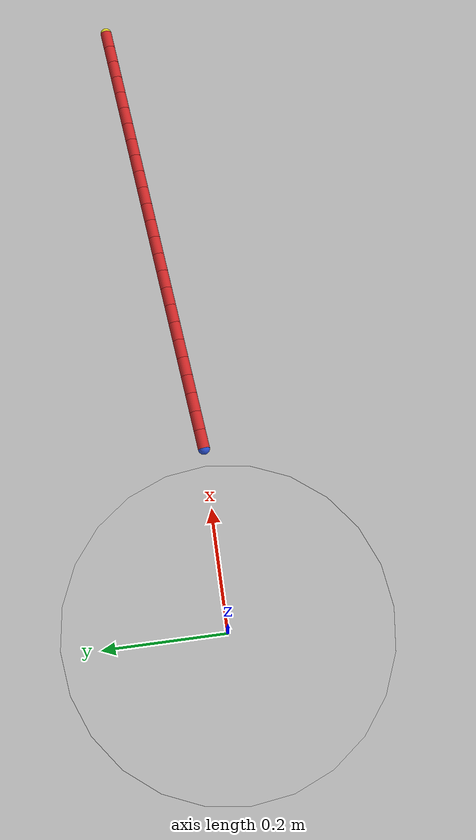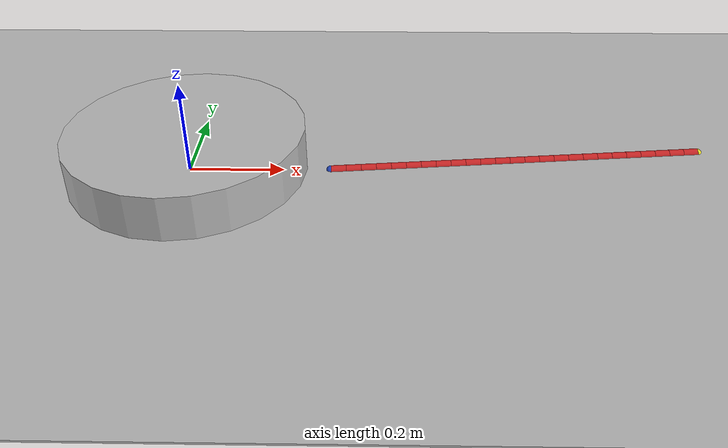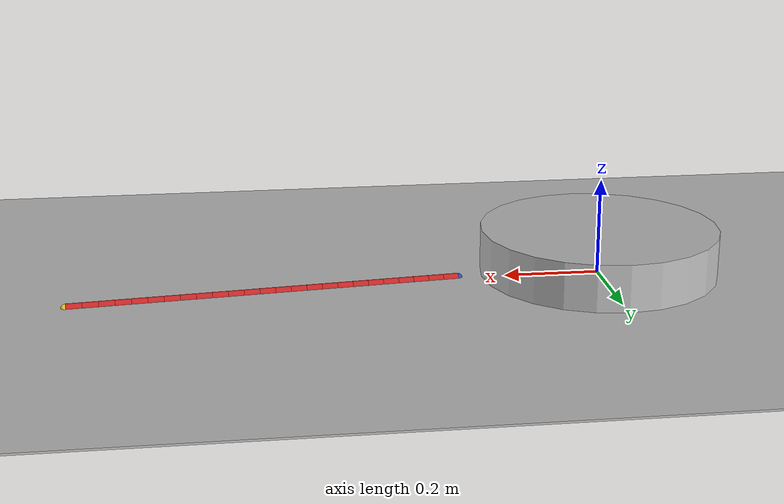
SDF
<?xml version="1.0" ?>
<sdf version="1.4">
    <world name="default">
        <scene>
            <grid>false</grid>
            <origin_visual>false</origin_visual>
            <sky>
                <clouds>
                    <speed>12</speed>
                </clouds>
            </sky>
        </scene>

        <physics type="ode">
            <real_time_update_rate>1</real_time_update_rate>
            <ode>
                <solver>
                    <thread_position_correction>0</thread_position_correction>
                    <island_threads>2</island_threads>
                </solver>
                <constraints>
                    <erp>0.8</erp>
                </constraints>
            </ode>
        </physics>

        <plugin name="arm_gazebo_ros" filename="libarm_gazebo_ros_plugin.so"/>
        <plugin name="gazebo_ros_tf_plugin" filename="libgazebo_ros_tf_plugin.so"/>
        <plugin name="position_3d_plugin" filename="libposition_3d_plugin.so"/>
        <plugin name="collision_map_plugin" filename="libcollision_map_plugin.so"/>

        <include>
            <uri>model://my_ground_plane</uri>
            <pose>0 0 0 0 0 0</pose>
        </include>

        <include>
            <uri>model://sun</uri>
        </include>

        <!-- The Rope -->
        <include>
            <pose>0.3 0 0 0 0 0.1</pose>
            <uri>model://rope_3d</uri>
        </include>

        <model name="cylinder">
            <pose>0 0 0 0 0 0</pose>
            <static>true</static>
            <link name="link">
                <pose>0 0 0.05 0 0 0</pose>
                <collision name="link_collision">
                    <geometry>
                        <cylinder>
                            <radius>0.25</radius>
                            <length>0.1</length>
                        </cylinder>
                    </geometry>
                </collision>
                <visual name="link_visual">
                    <geometry>
                        <cylinder>
                            <radius>0.25</radius>
                            <length>0.1</length>
                        </cylinder>
                    </geometry>
                </visual>
            </link>
        </model>
    </world>
</sdf>

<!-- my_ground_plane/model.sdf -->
<sdf version="1.5">
    <model name="my_ground_plane">
        <static>true</static>
            <allow_auto_disable>true</allow_auto_disable>
        <link name="link">
            <collision name="collision">
                <geometry>
                    <plane>
                        <normal>0 0 1</normal>
                        <size>4 4</size>
                    </plane>
                </geometry>
                <surface>
                    <friction>
                        <ode>
                            <mu>1000</mu>
                            <mu2>1000</mu2>
                        </ode>
                    </friction>
                    <contact>
                        <ode>
                            <kp>1e15</kp>
                            <kd>1e10</kd>
                        </ode>
                    </contact>
                </surface>
            </collision>
            <visual name="visual">
                <cast_shadows>false</cast_shadows>
                <geometry>
                    <plane>
                        <normal>0 0 1</normal>
                        <size>4 4</size>
                    </plane>
                </geometry>
                <material>
                    <script>
                        <uri>model://my_ground_plane/concrete.material</uri>
                        <name>ConcreteTexture</name>
                    </script>
                </material>
            </visual>
        </link>
    </model>
</sdf>
